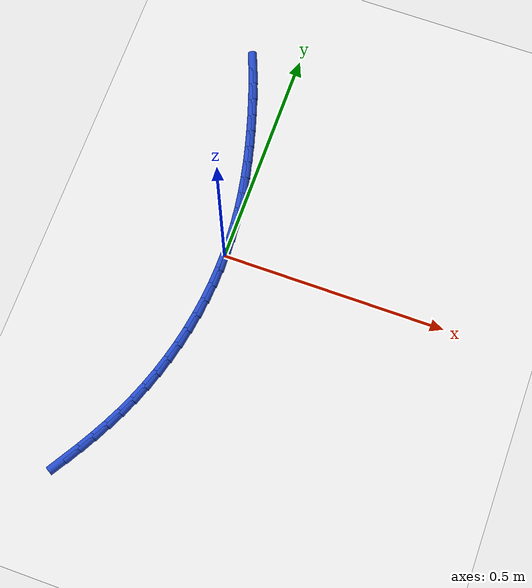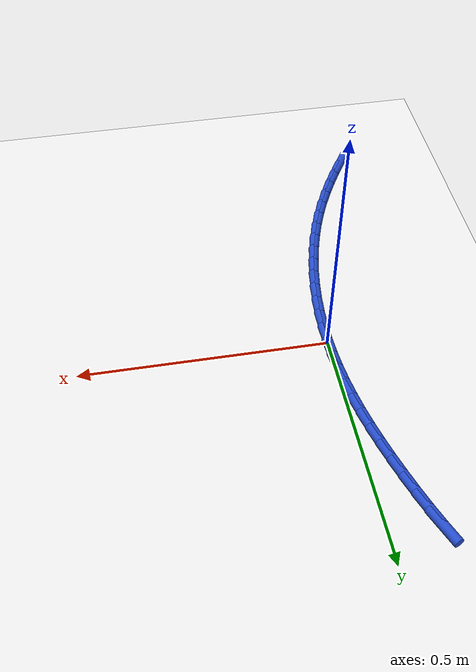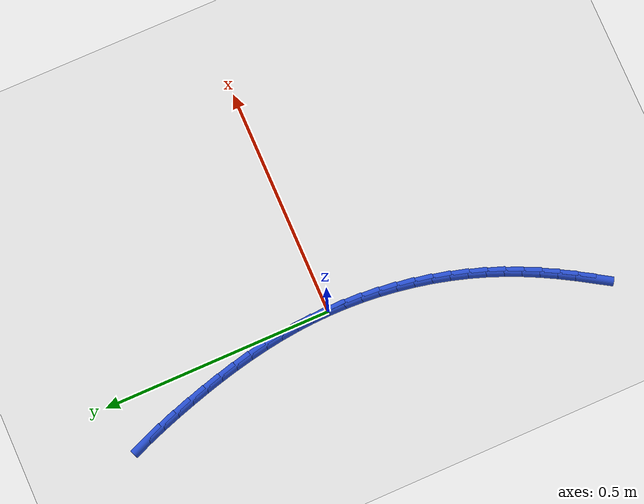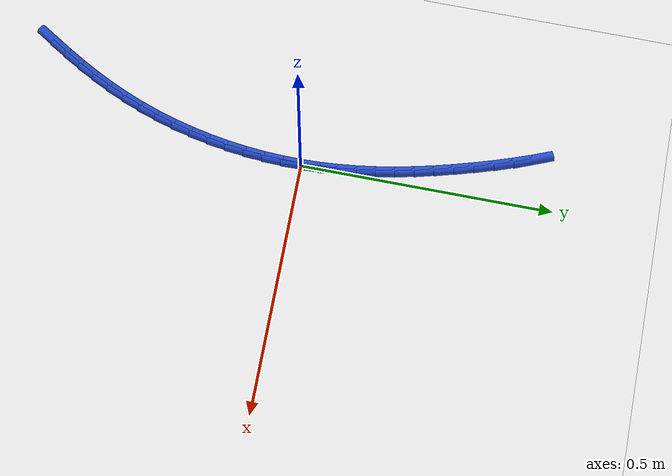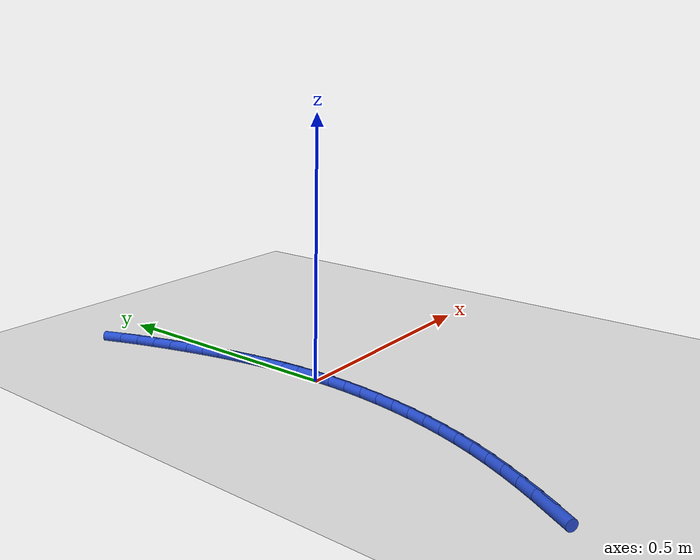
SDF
<sdf version="1.6">
 <world name="default">
  <model name="ground_plane">
   <static>1</static>
   <link name="link">
    <collision name="collision">
     <geometry><plane><normal>0 0 1</normal><size>100 100</size></plane></geometry>
     <surface><friction><ode><mu>100</mu><mu2>50</mu2></ode></friction></surface>
    </collision>
    <visual name="visual">
     <cast_shadows>0</cast_shadows>
     <geometry><plane><normal>0 0 1</normal><size>100 100</size></plane></geometry>
     <material>
      <script><uri>file://media/materials/scripts/gazebo.material</uri><name>Gazebo/WhiteGlow</name></script>
     </material>
    </visual>
   </link>
  </model>
  <model name="line">
   <link name="link_0">
    <pose>2.42861286636753e-17 -3.469446951953614e-17 0.01 0 1.57 -1.5377557632998335</pose>
    <collision name="collision">
     <geometry><cylinder><radius>0.01</radius><length>0.08</length></cylinder></geometry>
    </collision>
    <visual name="visual">
     <material>
      <script><name>Gazebo/Blue</name><uri>file://media/materials/scripts/gazebo.material</uri></script>
     </material>
     <geometry><cylinder><radius>0.01</radius><length>0.08</length></cylinder></geometry>
    </visual>
   </link>
   <link name="link_1">
    <pose>-0.0012306059530227701 0.03723175338058333 0.01 0 1.57 -1.4981308171047736</pose>
    <collision name="collision">
     <geometry><cylinder><radius>0.01</radius><length>0.08</length></cylinder></geometry>
    </collision>
    <visual name="visual">
     <material>
      <script><name>Gazebo/Blue</name><uri>file://media/materials/scripts/gazebo.material</uri></script>
     </material>
     <geometry><cylinder><radius>0.01</radius><length>0.08</length></cylinder></geometry>
    </visual>
   </link>
   <link name="link_2">
    <pose>-0.003926080249354473 0.0742607146288759 0.01 0 1.57 -1.4605051240655114</pose>
    <collision name="collision">
     <geometry><cylinder><radius>0.01</radius><length>0.08</length></cylinder></geometry>
    </collision>
    <visual name="visual">
     <material>
      <script><name>Gazebo/Blue</name><uri>file://media/materials/scripts/gazebo.material</uri></script>
     </material>
     <geometry><cylinder><radius>0.01</radius><length>0.08</length></cylinder></geometry>
    </visual>
   </link>
   <link name="link_3">
    <pose>-0.0080105806420347 0.11114421353906367 0.01 0 1.57 -1.425140529627484</pose>
    <collision name="collision">
     <geometry><cylinder><radius>0.01</radius><length>0.08</length></cylinder></geometry>
    </collision>
    <visual name="visual">
     <material>
      <script><name>Gazebo/Blue</name><uri>file://media/materials/scripts/gazebo.material</uri></script>
     </material>
     <geometry><cylinder><radius>0.01</radius><length>0.08</length></cylinder></geometry>
    </visual>
   </link>
   <link name="link_4">
    <pose>-0.013408264884103072 0.14793957990533274 0.01 0 1.57 -1.3922448819460405</pose>
    <collision name="collision">
     <geometry><cylinder><radius>0.01</radius><length>0.08</length></cylinder></geometry>
    </collision>
    <visual name="visual">
     <material>
      <script><name>Gazebo/Blue</name><uri>file://media/materials/scripts/gazebo.material</uri></script>
     </material>
     <geometry><cylinder><radius>0.01</radius><length>0.08</length></cylinder></geometry>
    </visual>
   </link>
   <link name="link_5">
    <pose>-0.020043290728599214 0.18470414352186912 0.01 0 1.57 -1.3619722542262391</pose>
    <collision name="collision">
     <geometry><cylinder><radius>0.01</radius><length>0.08</length></cylinder></geometry>
    </collision>
    <visual name="visual">
     <material>
      <script><name>Gazebo/Blue</name><uri>file://media/materials/scripts/gazebo.material</uri></script>
     </material>
     <geometry><cylinder><radius>0.01</radius><length>0.08</length></cylinder></geometry>
    </visual>
   </link>
   <link name="link_6">
    <pose>-0.02783981592856273 0.22149523418285877 0.01 0 1.57 -1.3344259769714146</pose>
    <collision name="collision">
     <geometry><cylinder><radius>0.01</radius><length>0.08</length></cylinder></geometry>
    </collision>
    <visual name="visual">
     <material>
      <script><name>Gazebo/Blue</name><uri>file://media/materials/scripts/gazebo.material</uri></script>
     </material>
     <geometry><cylinder><radius>0.01</radius><length>0.08</length></cylinder></geometry>
    </visual>
   </link>
   <link name="link_7">
    <pose>-0.03672199823703327 0.25837018168248793 0.01 0 1.57 -1.309663646399887</pose>
    <collision name="collision">
     <geometry><cylinder><radius>0.01</radius><length>0.08</length></cylinder></geometry>
    </collision>
    <visual name="visual">
     <material>
      <script><name>Gazebo/Blue</name><uri>file://media/materials/scripts/gazebo.material</uri></script>
     </material>
     <geometry><cylinder><radius>0.01</radius><length>0.08</length></cylinder></geometry>
    </visual>
   </link>
   <link name="link_8">
    <pose>-0.046613995407050426 0.2953863158149424 0.01 0 1.57 -1.287703276062982</pose>
    <collision name="collision">
     <geometry><cylinder><radius>0.01</radius><length>0.08</length></cylinder></geometry>
    </collision>
    <visual name="visual">
     <material>
      <script><name>Gazebo/Blue</name><uri>file://media/materials/scripts/gazebo.material</uri></script>
     </material>
     <geometry><cylinder><radius>0.01</radius><length>0.08</length></cylinder></geometry>
    </visual>
   </link>
   <link name="link_9">
    <pose>-0.05743996519165384 0.33260096637440845 0.01 0 1.57 -1.2680426985150708</pose>
    <collision name="collision">
     <geometry><cylinder><radius>0.01</radius><length>0.08</length></cylinder></geometry>
    </collision>
    <visual name="visual">
     <material>
      <script><name>Gazebo/Blue</name><uri>file://media/materials/scripts/gazebo.material</uri></script>
     </material>
     <geometry><cylinder><radius>0.01</radius><length>0.08</length></cylinder></geometry>
    </visual>
   </link>
   <link name="link_10">
    <pose>-0.06913681231028376 0.37004813887499416 0.01 0 1.57 -1.2463307773022332</pose>
    <collision name="collision">
     <geometry><cylinder><radius>0.01</radius><length>0.08</length></cylinder></geometry>
    </collision>
    <visual name="visual">
     <material>
      <script><name>Gazebo/Blue</name><uri>file://media/materials/scripts/gazebo.material</uri></script>
     </material>
     <geometry><cylinder><radius>0.01</radius><length>0.08</length></cylinder></geometry>
    </visual>
   </link>
   <link name="link_11">
    <pose>-0.08175316042639008 0.40755741655038663 0.01 0 1.57 -1.220121021606591</pose>
    <collision name="collision">
     <geometry><cylinder><radius>0.01</radius><length>0.08</length></cylinder></geometry>
    </collision>
    <visual name="visual">
     <material>
      <script><name>Gazebo/Blue</name><uri>file://media/materials/scripts/gazebo.material</uri></script>
     </material>
     <geometry><cylinder><radius>0.01</radius><length>0.08</length></cylinder></geometry>
    </visual>
   </link>
   <link name="link_12">
    <pose>-0.09539548594241155 0.44485252423274974 0.01 0 1.57 -1.1890313534579608</pose>
    <collision name="collision">
     <geometry><cylinder><radius>0.01</radius><length>0.08</length></cylinder></geometry>
    </collision>
    <visual name="visual">
     <material>
      <script><name>Gazebo/Blue</name><uri>file://media/materials/scripts/gazebo.material</uri></script>
     </material>
     <geometry><cylinder><radius>0.01</radius><length>0.08</length></cylinder></geometry>
    </visual>
   </link>
   <link name="link_165">
    <pose>-0.15823146450277595 -0.532824503659915 0.01 0 1.57 1.0185780508409557</pose>
    <collision name="collision">
     <geometry><cylinder><radius>0.01</radius><length>0.08</length></cylinder></geometry>
    </collision>
    <visual name="visual">
     <material>
      <script><name>Gazebo/Blue</name><uri>file://media/materials/scripts/gazebo.material</uri></script>
     </material>
     <geometry><cylinder><radius>0.01</radius><length>0.08</length></cylinder></geometry>
    </visual>
   </link>
   <link name="link_166">
    <pose>-0.1385175322267258 -0.5008297548954378 0.01 0 1.57 1.0473759412719246</pose>
    <collision name="collision">
     <geometry><cylinder><radius>0.01</radius><length>0.08</length></cylinder></geometry>
    </collision>
    <visual name="visual">
     <material>
      <script><name>Gazebo/Blue</name><uri>file://media/materials/scripts/gazebo.material</uri></script>
     </material>
     <geometry><cylinder><radius>0.01</radius><length>0.08</length></cylinder></geometry>
    </visual>
   </link>
   <link name="link_167">
    <pose>-0.11981558749970568 -0.4684236873378272 0.01 0 1.57 1.0795548920876596</pose>
    <collision name="collision">
     <geometry><cylinder><radius>0.01</radius><length>0.08</length></cylinder></geometry>
    </collision>
    <visual name="visual">
     <material>
      <script><name>Gazebo/Blue</name><uri>file://media/materials/scripts/gazebo.material</uri></script>
     </material>
     <geometry><cylinder><radius>0.01</radius><length>0.08</length></cylinder></geometry>
    </visual>
   </link>
   <link name="link_168">
    <pose>-0.10221837974888259 -0.4355307161012636 0.01 0 1.57 1.1150229045795637</pose>
    <collision name="collision">
     <geometry><cylinder><radius>0.01</radius><length>0.08</length></cylinder></geometry>
    </collision>
    <visual name="visual">
     <material>
      <script><name>Gazebo/Blue</name><uri>file://media/materials/scripts/gazebo.material</uri></script>
     </material>
     <geometry><cylinder><radius>0.01</radius><length>0.08</length></cylinder></geometry>
    </visual>
   </link>
   <link name="link_169">
    <pose>-0.08581865840142346 -0.40207525629992746 0.01 0 1.57 1.1536304906919377</pose>
    <collision name="collision">
     <geometry><cylinder><radius>0.01</radius><length>0.08</length></cylinder></geometry>
    </collision>
    <visual name="visual">
     <material>
      <script><name>Gazebo/Blue</name><uri>file://media/materials/scripts/gazebo.material</uri></script>
     </material>
     <geometry><cylinder><radius>0.01</radius><length>0.08</length></cylinder></geometry>
    </visual>
   </link>
   <link name="link_170">
    <pose>-0.07070917288449496 -0.3679817230479982 0.01 0 1.57 1.1951526249283395</pose>
    <collision name="collision">
     <geometry><cylinder><radius>0.01</radius><length>0.08</length></cylinder></geometry>
    </collision>
    <visual name="visual">
     <material>
      <script><name>Gazebo/Blue</name><uri>file://media/materials/scripts/gazebo.material</uri></script>
     </material>
     <geometry><cylinder><radius>0.01</radius><length>0.08</length></cylinder></geometry>
    </visual>
   </link>
   <link name="link_171">
    <pose>-0.05698245050752428 -0.33317503054619213 0.01 0 1.57 1.2381322132188508</pose>
    <collision name="collision">
     <geometry><cylinder><radius>0.01</radius><length>0.08</length></cylinder></geometry>
    </collision>
    <visual name="visual">
     <material>
      <script><name>Gazebo/Blue</name><uri>file://media/materials/scripts/gazebo.material</uri></script>
     </material>
     <geometry><cylinder><radius>0.01</radius><length>0.08</length></cylinder></geometry>
    </visual>
   </link>
   <link name="link_172">
    <pose>-0.0447046884584299 -0.29763925535240376 0.01 0 1.57 1.2802659232795799</pose>
    <collision name="collision">
     <geometry><cylinder><radius>0.01</radius><length>0.08</length></cylinder></geometry>
    </collision>
    <visual name="visual">
     <material>
      <script><name>Gazebo/Blue</name><uri>file://media/materials/scripts/gazebo.material</uri></script>
     </material>
     <geometry><cylinder><radius>0.01</radius><length>0.08</length></cylinder></geometry>
    </visual>
   </link>
   <link name="link_173">
    <pose>-0.033891238046060916 -0.2614727219613564 0.01 0 1.57 1.3215095805642343</pose>
    <collision name="collision">
     <geometry><cylinder><radius>0.01</radius><length>0.08</length></cylinder></geometry>
    </collision>
    <visual name="visual">
     <material>
      <script><name>Gazebo/Blue</name><uri>file://media/materials/scripts/gazebo.material</uri></script>
     </material>
     <geometry><cylinder><radius>0.01</radius><length>0.08</length></cylinder></geometry>
    </visual>
   </link>
   <link name="link_174">
    <pose>-0.024551649139610335 -0.22478679038851707 0.01 0 1.57 1.3620891774717063</pose>
    <collision name="collision">
     <geometry><cylinder><radius>0.01</radius><length>0.08</length></cylinder></geometry>
    </collision>
    <visual name="visual">
     <material>
      <script><name>Gazebo/Blue</name><uri>file://media/materials/scripts/gazebo.material</uri></script>
     </material>
     <geometry><cylinder><radius>0.01</radius><length>0.08</length></cylinder></geometry>
    </visual>
   </link>
   <link name="link_175">
    <pose>-0.016695471608271104 -0.18769282064935272 0.01 0 1.57 1.4022292597949797</pose>
    <collision name="collision">
     <geometry><cylinder><radius>0.01</radius><length>0.08</length></cylinder></geometry>
    </collision>
    <visual name="visual">
     <material>
      <script><name>Gazebo/Blue</name><uri>file://media/materials/scripts/gazebo.material</uri></script>
     </material>
     <geometry><cylinder><radius>0.01</radius><length>0.08</length></cylinder></geometry>
    </visual>
   </link>
   <link name="link_176">
    <pose>-0.01033225532123612 -0.1503021727593297 0.01 0 1.57 1.442153925776556</pose>
    <collision name="collision">
     <geometry><cylinder><radius>0.01</radius><length>0.08</length></cylinder></geometry>
    </collision>
    <visual name="visual">
     <material>
      <script><name>Gazebo/Blue</name><uri>file://media/materials/scripts/gazebo.material</uri></script>
     </material>
     <geometry><cylinder><radius>0.01</radius><length>0.08</length></cylinder></geometry>
    </visual>
   </link>
   <link name="link_177">
    <pose>-0.005471550147698618 -0.1127262067339164 0.01 0 1.57 1.4820881552493868</pose>
    <collision name="collision">
     <geometry><cylinder><radius>0.01</radius><length>0.08</length></cylinder></geometry>
    </collision>
    <visual name="visual">
     <material>
      <script><name>Gazebo/Blue</name><uri>file://media/materials/scripts/gazebo.material</uri></script>
     </material>
     <geometry><cylinder><radius>0.01</radius><length>0.08</length></cylinder></geometry>
    </visual>
   </link>
   <link name="link_178">
    <pose>-0.002122905956851437 -0.07507628258857903 0.01 0 1.57 1.522259343035847</pose>
    <collision name="collision">
     <geometry><cylinder><radius>0.01</radius><length>0.08</length></cylinder></geometry>
    </collision>
    <visual name="visual">
     <material>
      <script><name>Gazebo/Blue</name><uri>file://media/materials/scripts/gazebo.material</uri></script>
     </material>
     <geometry><cylinder><radius>0.01</radius><length>0.08</length></cylinder></geometry>
    </visual>
   </link>
   <link name="link_179">
    <pose>-0.0002958726178875588 -0.03746376033878457 0.01 0 1.57 1.5628989223674254</pose>
    <collision name="collision">
     <geometry><cylinder><radius>0.01</radius><length>0.08</length></cylinder></geometry>
    </collision>
    <visual name="visual">
     <material>
      <script><name>Gazebo/Blue</name><uri>file://media/materials/scripts/gazebo.material</uri></script>
     </material>
     <geometry><cylinder><radius>0.01</radius><length>0.08</length></cylinder></geometry>
    </visual>
   </link>
   <link name="link_180">
    <pose>2.949029909160572e-17 2.7755575615628914e-17 0.01 0 1.57 -1.537348691767723</pose>
    <collision name="collision">
     <geometry><cylinder><radius>0.01</radius><length>0.08</length></cylinder></geometry>
    </collision>
    <visual name="visual">
     <material>
      <script><name>Gazebo/Blue</name><uri>file://media/materials/scripts/gazebo.material</uri></script>
     </material>
     <geometry><cylinder><radius>0.01</radius><length>0.08</length></cylinder></geometry>
    </visual>
   </link>
   <link name="link_181">
    <pose>-0.0012448379723816547 0.037203638412307755 0.01 0 1.57 -1.5373486917677233</pose>
    <collision name="collision">
     <geometry><cylinder><radius>0.01</radius><length>0.08</length></cylinder></geometry>
    </collision>
    <visual name="visual">
     <material>
      <script><name>Gazebo/Blue</name><uri>file://media/materials/scripts/gazebo.material</uri></script>
     </material>
     <geometry><cylinder><radius>0.01</radius><length>0.08</length></cylinder></geometry>
    </visual>
   </link>
  </model>
 </world>
</sdf>
